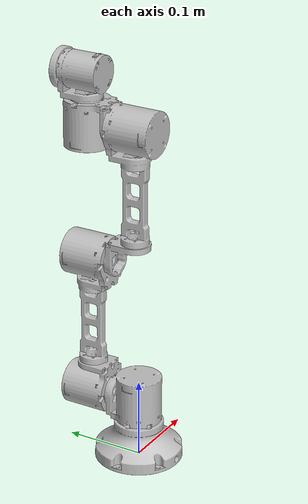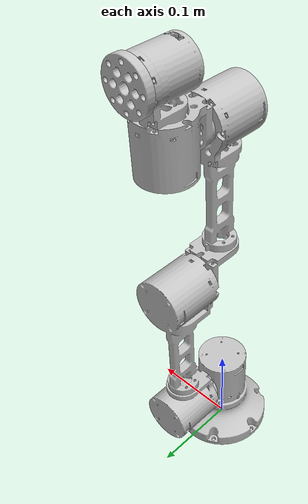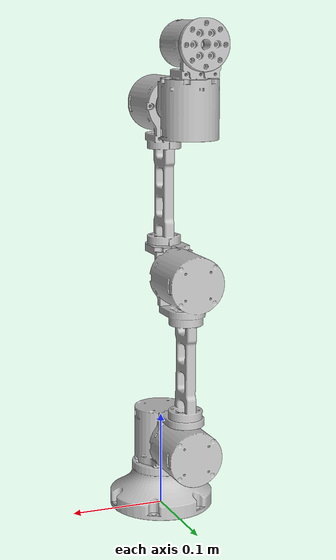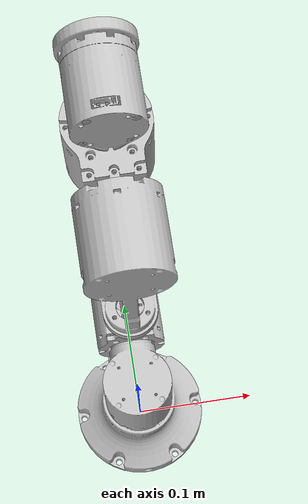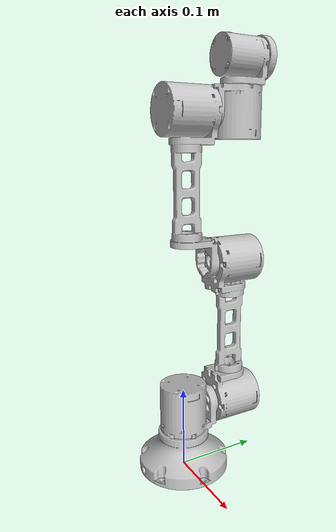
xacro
<?xml version="1.0"?>
<robot xmlns:xacro="http://www.ros.org/wiki/xacro" name="easyarm_a1">
    <xacro:arg name="initial_positions_file" default="initial_positions.yaml" />
    <xacro:arg name="easyarm_urdf_path" default="$(find easyarm_description)/urdf/easyarm_a1_h0616.urdf" />
    <xacro:arg name="debug_enable" default="false" />
    <xacro:arg name="use_mock_hardware" default="false" />

    <!-- Import easyarm_a1 urdf file -->
    <xacro:include filename="$(arg easyarm_urdf_path)" />

    <!-- Import control_xacro -->
    <xacro:include filename="easyarm_a1.ros2_control.xacro" />

    <xacro:easyarm_a1_ros2_control
        name="EasyArmHardware"
        initial_positions_file="$(arg initial_positions_file)"
        urdf_path="$(arg easyarm_urdf_path)"
        debug_enable="$(arg debug_enable)"
        use_mock_hardware="$(arg use_mock_hardware)"/>

</robot>

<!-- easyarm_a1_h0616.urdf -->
<!-- |    This document was autogenerated by xacro from src/easyarm_description/urdf/easyarm_a1_h0617.urdf.xacro | -->
<!-- |    EDITING THIS FILE BY HAND IS NOT RECOMMENDED                                 | -->
<robot name="ass_easyarm_a1_h0617">
  <link name="base_link">
    <inertial>
      <origin rpy="0.0 0.0 0.0" xyz="1.85864301500435e-08 0.000170528015075361 0.0233752275370471"/>
      <mass value="0.141091157039369"/>
      <inertia ixx="0.000117337484347889" ixy="-9.04390040901409e-11" ixz="1.55362925573062e-11" iyy="0.0001185851036162" iyz="2.66614551541239e-07" izz="0.000208390027083898"/>
    </inertial>
    <visual>
      <origin rpy="0.0 0.0 0.0" xyz="0.0 0.0 0.0"/>
      <geometry>
        <mesh filename="package://easyarm_description/meshes/easyarm_h0616/base_link.STL"/>
      </geometry>
      <material name="">
        <color rgba="0.752941176470588 0.752941176470588 0.752941176470588 1.0"/>
      </material>
    </visual>
    <collision>
      <origin rpy="0.0 0.0 0.0" xyz="0.0 0.0 0.0"/>
      <geometry>
        <mesh filename="package://easyarm_description/meshes/easyarm_h0616/base_link.STL"/>
      </geometry>
    </collision>
  </link>
  <link name="Link1">
    <inertial>
      <origin rpy="0.0 0.0 0.0" xyz="1.8778e-10 -0.0029368 -0.023504"/>
      <mass value="0.14848"/>
      <inertia ixx="5.9195e-05" ixy="-5.7068e-09" ixz="7.3201e-13" iyy="5.8621e-05" iyz="-1.0137e-07" izz="6.0699e-05"/>
    </inertial>
    <visual>
      <origin rpy="0.0 0.0 0.0" xyz="0.0 0.0 0.0"/>
      <geometry>
        <mesh filename="package://easyarm_description/meshes/easyarm_h0616/Link1.STL"/>
      </geometry>
      <material name="">
        <color rgba="0.75294 0.75294 0.75294 1.0"/>
      </material>
    </visual>
    <collision>
      <origin rpy="0.0 0.0 0.0" xyz="0.0 0.0 0.0"/>
      <geometry>
        <mesh filename="package://easyarm_description/meshes/easyarm_h0616/Link1.STL"/>
      </geometry>
    </collision>
  </link>
  <joint name="Joint1" type="revolute">
    <origin rpy="3.1416 0.0 0.0" xyz="0.0 0.0 0.058"/>
    <parent link="base_link"/>
    <child link="Link1"/>
    <axis xyz="0.0 0.0 1.0"/>
    <limit effort="6.0" lower="-3.14" upper="3.14" velocity="10.0"/>
  </joint>
  <link name="Link2">
    <inertial>
      <origin rpy="0.0 0.0 0.0" xyz="1.9675e-13 0.14888357064008506 -0.023386015547895038"/>
      <mass value="0.7744593105296842"/>
      <inertia ixx="0.00013277" ixy="-1.1414e-08" ixz="1.3378e-19" iyy="0.00011937" iyz="2.5314e-16" izz="0.00013393"/>
    </inertial>
    <visual>
      <origin rpy="0.0 0.0 0.0" xyz="0.0 0.0 0.0"/>
      <geometry>
        <mesh filename="package://easyarm_description/meshes/easyarm_h0616/Link2.STL"/>
      </geometry>
      <material name="">
        <color rgba="0.75294 0.75294 0.75294 1.0"/>
      </material>
    </visual>
    <collision>
      <origin rpy="0.0 0.0 0.0" xyz="0.0 0.0 0.0"/>
      <geometry>
        <mesh filename="package://easyarm_description/meshes/easyarm_h0616/Link2.STL"/>
      </geometry>
    </collision>
  </link>
  <joint name="Joint2" type="revolute">
    <origin rpy="-1.5708 0.0 0.0" xyz="0.0 -0.045 -0.0214"/>
    <parent link="Link1"/>
    <child link="Link2"/>
    <axis xyz="0.0 0.0 1.0"/>
    <limit effort="6.0" lower="-3.14" upper="3.14" velocity="10.0"/>
  </joint>
  <link name="Link3">
    <inertial>
      <origin rpy="0.0 0.0 0.0" xyz="-1.93134327140323e-07 0.1716961962807577 0.03862004186243388"/>
      <mass value="0.5040220986569005"/>
      <inertia ixx="7.78611830449173e-05" ixy="5.64536059673564e-09" ixz="3.88896681156799e-10" iyy="6.63480692941198e-05" iyz="-2.53380690786543e-07" izz="7.791777594025e-05"/>
    </inertial>
    <visual>
      <origin rpy="0.0 0.0 0.0" xyz="0.0 0.0 0.0"/>
      <geometry>
        <mesh filename="package://easyarm_description/meshes/easyarm_h0616/Link3.STL"/>
      </geometry>
      <material name="">
        <color rgba="0.752941176470588 0.752941176470588 0.752941176470588 1.0"/>
      </material>
    </visual>
    <collision>
      <origin rpy="0.0 0.0 0.0" xyz="0.0 0.0 0.0"/>
      <geometry>
        <mesh filename="package://easyarm_description/meshes/easyarm_h0616/Link3.STL"/>
      </geometry>
    </collision>
  </link>
  <joint name="Joint3" type="revolute">
    <origin rpy="0.0 0.0 0.0" xyz="0.0 0.18 0.0"/>
    <parent link="Link2"/>
    <child link="Link3"/>
    <axis xyz="0.0 0.0 -1.0"/>
    <limit effort="6.0" lower="-3.14" upper="3.14" velocity="10.0"/>
  </joint>
  <link name="Link4">
    <inertial>
      <origin rpy="0.0 0.0 0.0" xyz="-2.9715e-10 -0.0256071706612383 0.04207217274784611"/>
      <mass value="0.38512475677337077"/>
      <inertia ixx="5.9195e-05" ixy="5.5776e-13" ixz="-5.7068e-09" iyy="6.0699e-05" iyz="1.0299e-07" izz="5.8621e-05"/>
    </inertial>
    <visual>
      <origin rpy="0.0 0.0 0.0" xyz="0.0 0.0 0.0"/>
      <geometry>
        <mesh filename="package://easyarm_description/meshes/easyarm_h0616/Link4.STL"/>
      </geometry>
      <material name="">
        <color rgba="0.75294 0.75294 0.75294 1.0"/>
      </material>
    </visual>
    <collision>
      <origin rpy="0.0 0.0 0.0" xyz="0.0 0.0 0.0"/>
      <geometry>
        <mesh filename="package://easyarm_description/meshes/easyarm_h0616/Link4.STL"/>
      </geometry>
    </collision>
  </link>
  <joint name="Joint4" type="revolute">
    <origin rpy="3.1416 0.0 0.0" xyz="0.0 0.172 0.0176"/>
    <parent link="Link3"/>
    <child link="Link4"/>
    <axis xyz="0.0 0.0 -1.0"/>
    <limit effort="6.0" lower="-3.14" upper="3.14" velocity="10.0"/>
  </joint>
  <link name="Link5">
    <inertial>
      <origin rpy="0.0 0.0 0.0" xyz="2.5974e-06 0.0104063809530744 0.0369714494779258"/>
      <mass value="0.06752108176639557"/>
      <inertia ixx="9.3201e-06" ixy="3.4243e-10" ixz="5.3817e-09" iyy="1.425e-05" iyz="-1.4514e-07" izz="9.8891e-06"/>
    </inertial>
    <visual>
      <origin rpy="0.0 0.0 0.0" xyz="0.0 0.0 0.0"/>
      <geometry>
        <mesh filename="package://easyarm_description/meshes/easyarm_h0616/Link5.STL"/>
      </geometry>
      <material name="">
        <color rgba="0.75294 0.75294 0.75294 1.0"/>
      </material>
    </visual>
    <collision>
      <origin rpy="0.0 0.0 0.0" xyz="0.0 0.0 0.0"/>
      <geometry>
        <mesh filename="package://easyarm_description/meshes/easyarm_h0616/Link5.STL"/>
      </geometry>
    </collision>
  </link>
  <joint name="Joint5" type="revolute">
    <origin rpy="1.5708 0.0 0.0" xyz="0.0 -0.0214 0.045"/>
    <parent link="Link4"/>
    <child link="Link5"/>
    <axis xyz="0.0 0.0 -1.0"/>
    <limit effort="6.0" lower="-3.14" upper="3.14" velocity="10.0"/>
  </joint>
  <link name="Link6">
    <inertial>
      <origin rpy="0.0 0.0 0.0" xyz="6.2237e-18 -0.0037014932714028725 -0.004262026896173586"/>
      <mass value="0.019926349172910973"/>
      <inertia ixx="2.6123e-06" ixy="-3.3894e-25" ixz="1.3422e-22" iyy="2.6123e-06" iyz="-2.6298e-22" izz="4.6702e-06"/>
    </inertial>
    <visual>
      <origin rpy="0.0 0.0 0.0" xyz="0.0 0.0 0.0"/>
      <geometry>
        <mesh filename="package://easyarm_description/meshes/easyarm_h0616/Link6.STL"/>
      </geometry>
      <material name="">
        <color rgba="0.75294 0.75294 0.75294 1.0"/>
      </material>
    </visual>
    <collision>
      <origin rpy="0.0 0.0 0.0" xyz="0.0 0.0 0.0"/>
      <geometry>
        <mesh filename="package://easyarm_description/meshes/easyarm_h0616/Link6.STL"/>
      </geometry>
    </collision>
  </link>
  <joint name="Joint6" type="revolute">
    <origin rpy="-1.5708 0.0 0.0" xyz="0.0 0.037 0.0399"/>
    <parent link="Link5"/>
    <child link="Link6"/>
    <axis xyz="0.0 0.0 -1.0"/>
    <limit effort="6.0" lower="-3.14" upper="3.14" velocity="10.0"/>
  </joint>
</robot>
